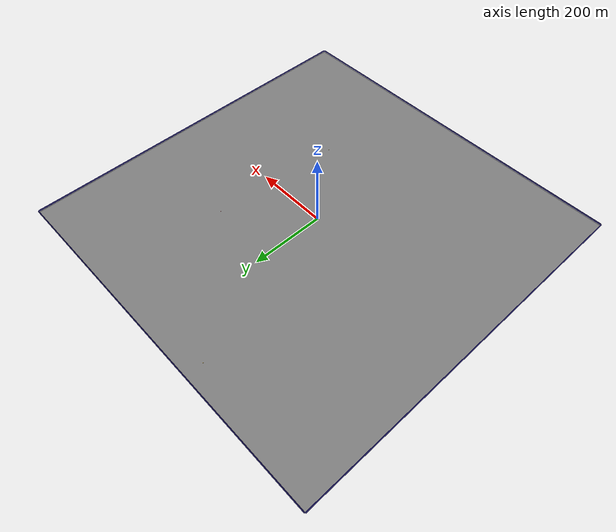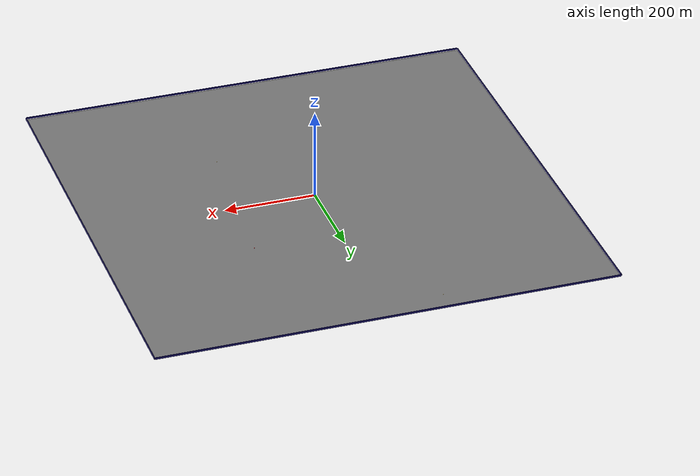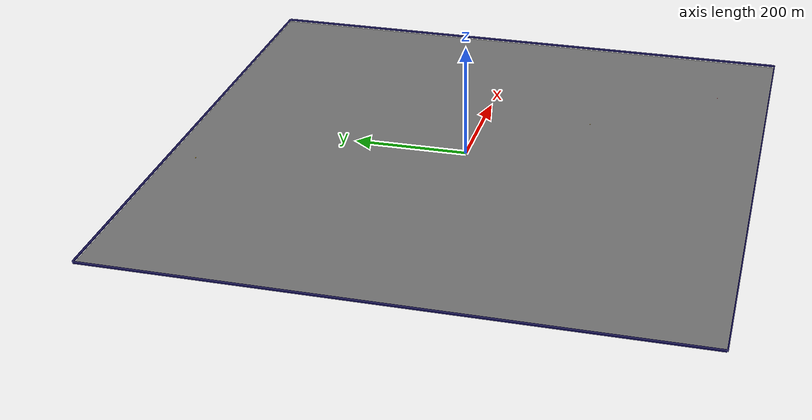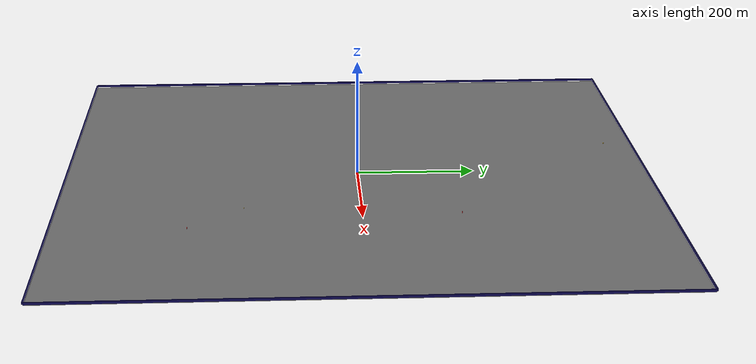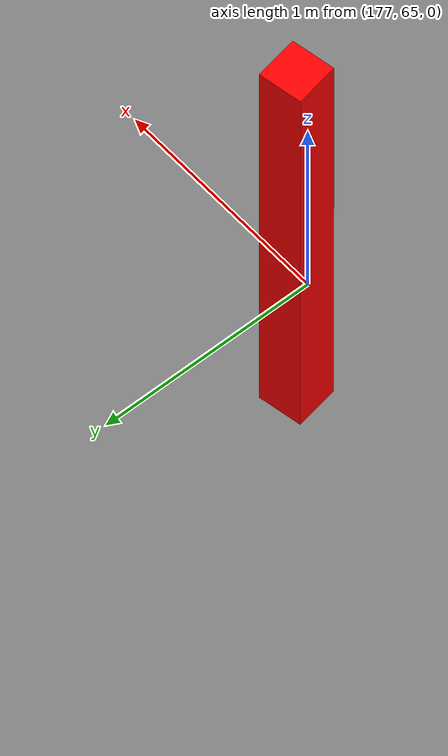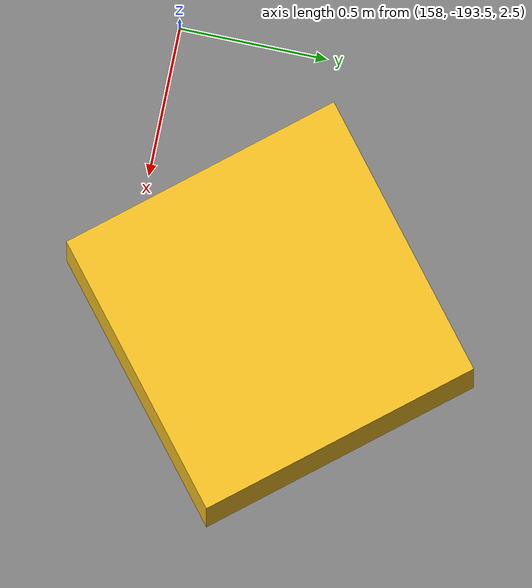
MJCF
<mujoco model="unnamed_model">
  <default>
    <default class="/" />
    <default class="border/" />
    <default class="border_1/" />
    <default class="border_2/" />
    <default class="border_3/" />
    <default class="agentplaceholder/" />
    <default class="placeholder_box/" />
    <default class="tree0/" />
    <default class="tree1/" />
    <default class="stone/" />
    <default class="stone_1/" />
  </default>
  <worldbody>
    <body name="border/">
      <body name="border/border" pos="0 501 2">
        <geom name="border/border_geom" class="border/" type="box" size="500 1 2" rgba="0.035000000000000003 0.016 0.28999999999999998 1" />
      </body>
    </body>
    <body name="border_1/">
      <body name="border_1/border" pos="0 -501 2">
        <geom name="border_1/border_geom" class="border_1/" type="box" size="500 1 2" rgba="0.035000000000000003 0.016 0.28999999999999998 1" />
      </body>
    </body>
    <body name="border_2/">
      <body name="border_2/border" pos="501 0 2">
        <geom name="border_2/border_geom" class="border_2/" type="box" size="1 500 2" rgba="0.035000000000000003 0.016 0.28999999999999998 1" />
      </body>
    </body>
    <body name="border_3/">
      <body name="border_3/border" pos="-501 0 2">
        <geom name="border_3/border_geom" class="border_3/" type="box" size="1 500 2" rgba="0.035000000000000003 0.016 0.28999999999999998 1" />
      </body>
    </body>
    <body euler="0 0 129.46405552242953" name="agentplaceholder/">
      <joint name="agentplaceholder/boxagent_freeJoint/" class="/" type="free" />
      <body name="agentplaceholder/agentplaceholder" pos="-250 0 3" euler="0 0 0">
        <geom name="agentplaceholder/boxagent_geom" class="agentplaceholder/" type="box" size="0.5 0.5 0.5" rgba="0.94899999999999995 0.74509999999999998 0.1333 1" euler="0 0 0" />
      </body>
    </body>
    <body name="placeholder_box/">
      <body name="placeholder_box/placeholder_box" pos="-128.11369999999999 452.91890000000001 0.5" euler="0 0 -88.635458781219469">
        <geom name="placeholder_box/box_geom" class="placeholder_box/" type="box" size="0.5 0.5 0.5" rgba="0.94899999999999995 0.74509999999999998 0.1333 1" euler="0 0 0" />
      </body>
    </body>
    <body name="tree0/">
      <body name="tree0/tree0" pos="176.64580000000001 65.358699999999999 0.10000000000000001" euler="0 0 -169.63301684358279">
        <geom name="tree0/tree_geom" class="tree0/" type="box" size="0.10000000000000001 0.10000000000000001 2" rgba="1 0 0 1" />
      </body>
    </body>
    <body name="tree1/">
      <body name="tree1/tree1" pos="327.4248 -406.33760000000001 0.10000000000000001" euler="0 0 -115.02285717644008">
        <geom name="tree1/tree_geom" class="tree1/" type="box" size="0.10000000000000001 0.10000000000000001 2" rgba="1 0 0 1" />
      </body>
    </body>
    <body name="stone/">
      <body name="stone/stone" pos="231.74095 -281.79790000000003 0.10000000000000001" euler="0 0 -42.092290876722245">
        <geom name="stone/stone_geom" class="stone/" type="box" size="0.10000000000000001 0.10000000000000001 2" rgba="1 0 0 1" />
      </body>
    </body>
    <body name="stone_1/">
      <body name="stone_1/stone" pos="185.85559999999998 162.3777 0.10000000000000001" euler="0 0 -62.231079734978479">
        <geom name="stone_1/stone_geom" class="stone_1/" type="box" size="0.10000000000000001 0.10000000000000001 2" rgba="1 0 0 1" />
      </body>
    </body>
    <geom name="base_plane" class="/" type="plane" size="500 500 0.10000000000000001" />
  </worldbody>
</mujoco>
